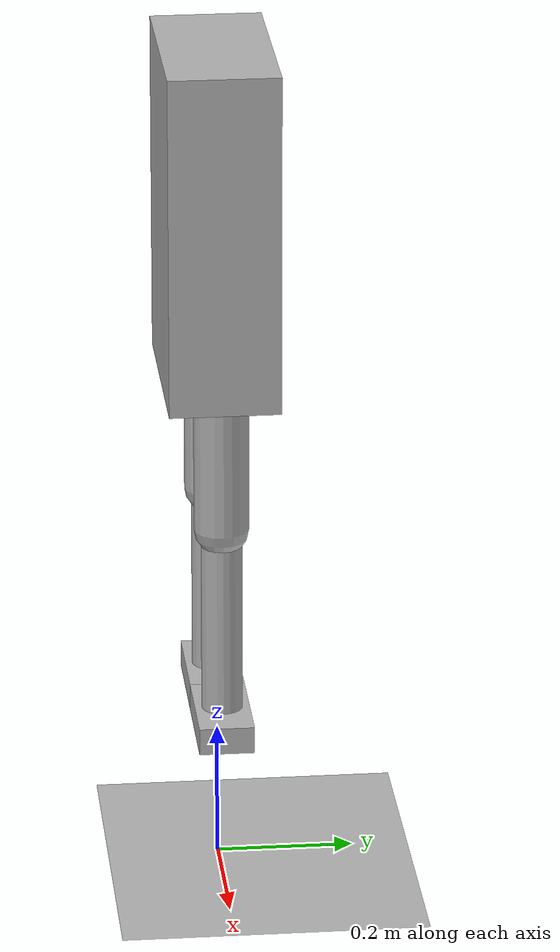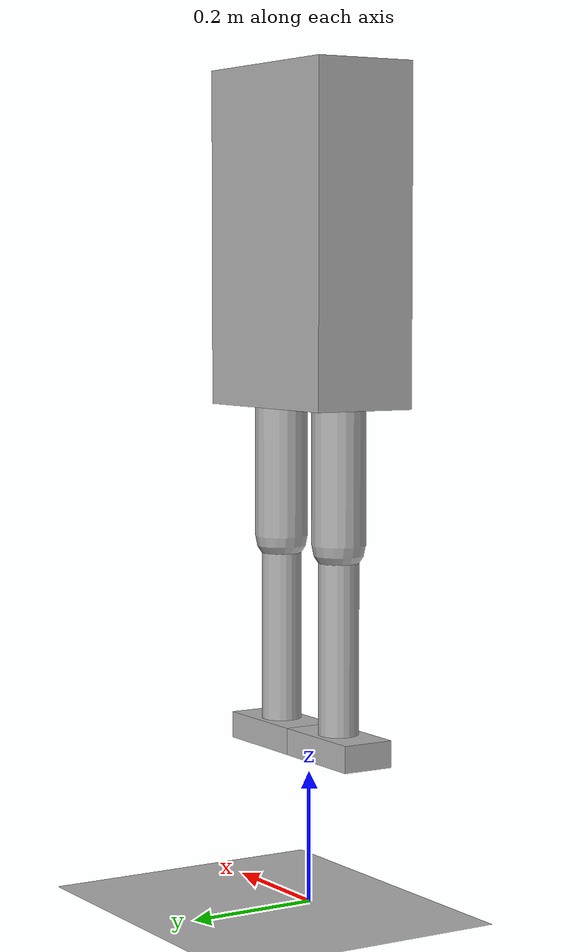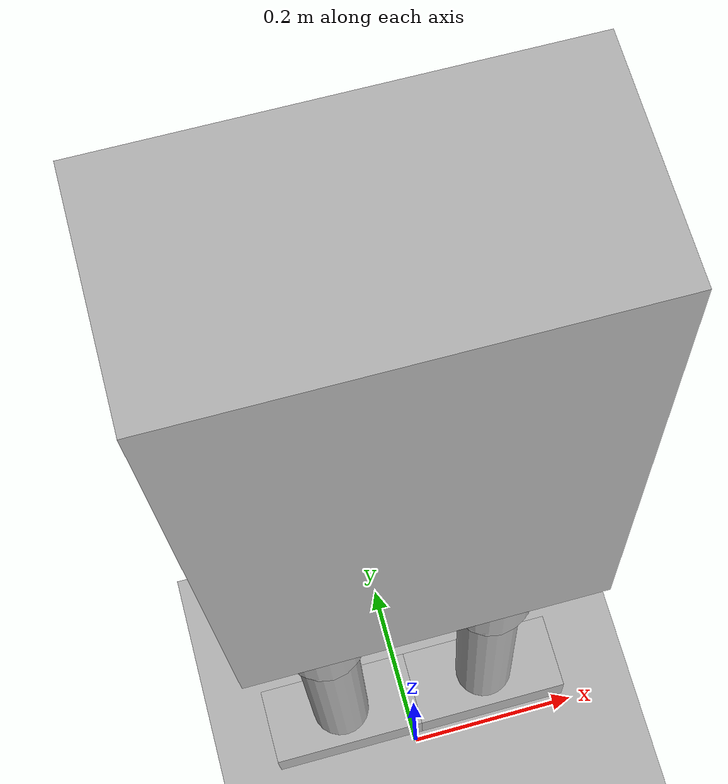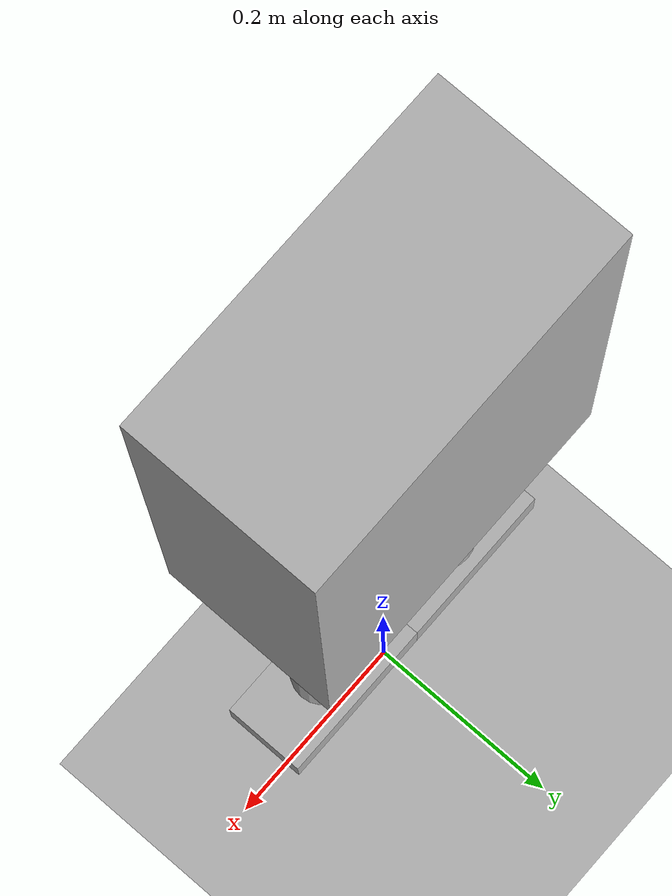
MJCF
<mujoco model="biped_trajectory_demo">
    <compiler angle="degree" coordinate="local" inertiafromgeom="true"/>

    <option timestep="0.01" gravity="0 0 -9.81" integrator="RK4"/>

    <default>
        <joint armature="0.01" damping="0.1" limited="true"/>
        <geom contype="1" conaffinity="1" condim="3" friction="1 0.5 0.005"
              rgba="0.7 0.7 0.7 1" density="1000"/>
    </default>

    <asset>
        <texture name="grid" type="2d" builtin="checker" rgb1="0.1 0.2 0.3"
                 rgb2="0.2 0.3 0.4" width="300" height="300"/>
        <material name="grid" texture="grid" texrepeat="8 8" reflectance="0.2"/>
        <material name="robot" rgba="0.6 0.6 0.8 1"/>
        <material name="foot" rgba="0.8 0.4 0.2 1"/>
    </asset>

    <worldbody>
        <light diffuse="0.5 0.5 0.5" pos="0 0 3" dir="0 0 -1"/>
        <geom name="floor" size="3 3 0.1" type="plane" material="grid"/>

        <!-- 机器人躯干 -->
        <body name="torso" pos="0 0 1.0">
            <geom name="torso_geom" type="box" size="0.15 0.08 0.25" material="robot"/>
            <joint name="root_joint" type="free"/>

            <!-- 左腿 -->
            <body name="left_thigh" pos="-0.08 0 -0.15">
                <joint name="left_hip" type="hinge" axis="0 1 0" range="-90 90"/>
                <geom name="left_thigh_geom" type="capsule" size="0.04" fromto="0 0 0 0 0 -0.3" material="robot"/>

                <body name="left_shin" pos="0 0 -0.3">
                    <joint name="left_knee" type="hinge" axis="0 1 0" range="-120 0"/>
                    <geom name="left_shin_geom" type="capsule" size="0.03" fromto="0 0 0 0 0 -0.3" material="robot"/>

                    <body name="left_foot" pos="0 0 -0.3">
                        <joint name="left_ankle" type="hinge" axis="0 1 0" range="-45 45"/>
                        <geom name="left_foot_geom" type="box" size="0.08 0.04 0.02" material="foot"/>
                        <!-- 左脚标记点 -->
                        <site name="left_foot_site" pos="0 0 -0.02" size="0.01" rgba="1 0 0 1"/>
                    </body>
                </body>
            </body>

            <!-- 右腿 -->
            <body name="right_thigh" pos="0.08 0 -0.15">
                <joint name="right_hip" type="hinge" axis="0 1 0" range="-90 90"/>
                <geom name="right_thigh_geom" type="capsule" size="0.04" fromto="0 0 0 0 0 -0.3" material="robot"/>

                <body name="right_shin" pos="0 0 -0.3">
                    <joint name="right_knee" type="hinge" axis="0 1 0" range="-120 0"/>
                    <geom name="right_shin_geom" type="capsule" size="0.03" fromto="0 0 0 0 0 -0.3" material="robot"/>

                    <body name="right_foot" pos="0 0 -0.3">
                        <joint name="right_ankle" type="hinge" axis="0 1 0" range="-45 45"/>
                        <geom name="right_foot_geom" type="box" size="0.08 0.04 0.02" material="foot"/>
                        <!-- 右脚标记点 -->
                        <site name="right_foot_site" pos="0 0 -0.02" size="0.01" rgba="0 0 1 1"/>
                    </body>
                </body>
            </body>
        </body>
    </worldbody>

    <actuator>
        <motor name="left_hip_motor" joint="left_hip" gear="100"/>
        <motor name="left_knee_motor" joint="left_knee" gear="100"/>
        <motor name="left_ankle_motor" joint="left_ankle" gear="50"/>
        <motor name="right_hip_motor" joint="right_hip" gear="100"/>
        <motor name="right_knee_motor" joint="right_knee" gear="100"/>
        <motor name="right_ankle_motor" joint="right_ankle" gear="50"/>
    </actuator>
</mujoco>
